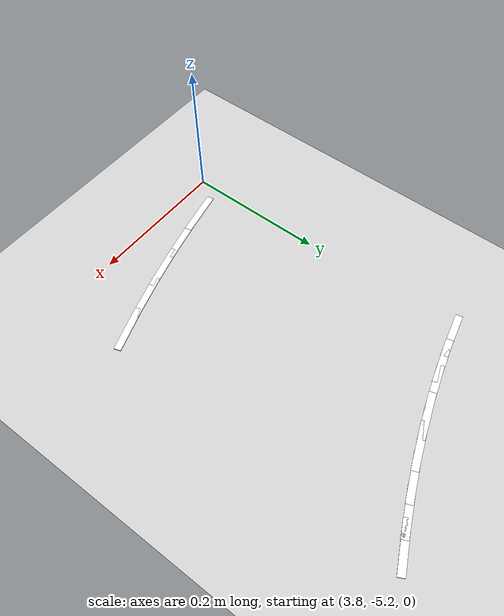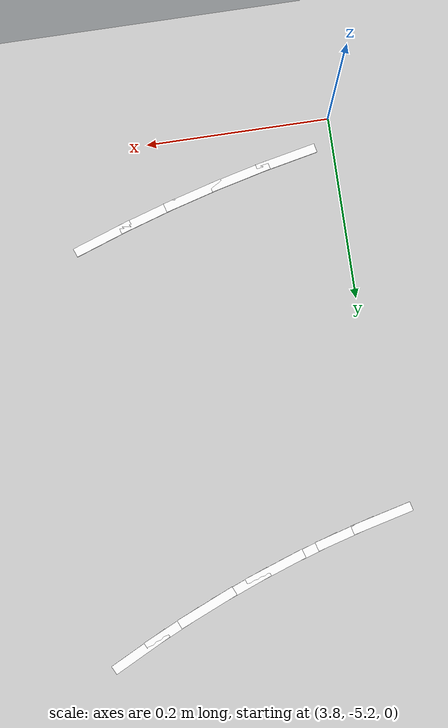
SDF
<sdf version="1.7">
 <world name="default">
  <model name="ground_plane">
   <static>1</static>
   <link name="link">
    <collision name="collision">
     <geometry><plane><normal>0 0 1</normal><size>100 100</size></plane></geometry>
     <surface>
      <contact><collide_bitmask>65535</collide_bitmask></contact>
      <friction><ode><mu>100</mu><mu2>50</mu2></ode></friction>
     </surface>
    </collision>
    <visual name="visual">
     <cast_shadows>0</cast_shadows>
     <geometry><plane><normal>0 0 1</normal><size>100 100</size></plane></geometry>
     <material>
      <script><uri>file://media/materials/scripts/gazebo.material</uri><name>Gazebo/Grey</name></script>
     </material>
    </visual>
   </link>
  </model>
  <model name="lane_line_right_56">
   <static>1</static>
   <link name="link">
    <pose>0 0 -0.004 0 -0 0</pose>
    <visual name="visual">
     <geometry><box><size>0.0681 0.01 0.01</size></box></geometry>
     <material><ambient>1 1 1 1</ambient><diffuse>1 1 1 1</diffuse></material>
    </visual>
    <collision name="collision"><geometry><box><size>0.0681 0.01 0.01</size></box></geometry></collision>
   </link>
   <pose>3.85163 -5.16304 0 0 -0 0.208371</pose>
  </model>
  <model name="lane_line_left_57">
   <static>1</static>
   <link name="link">
    <pose>0 0 -0.004 0 -0 0</pose>
    <visual name="visual">
     <geometry><box><size>0.0681 0.01 0.01</size></box></geometry>
     <material><ambient>1 1 1 1</ambient><diffuse>1 1 1 1</diffuse></material>
    </visual>
    <collision name="collision"><geometry><box><size>0.0681 0.01 0.01</size></box></geometry></collision>
   </link>
   <pose>3.80951 -4.76242 0 0 -0 0.240428</pose>
  </model>
  <model name="lane_line_right_57">
   <static>1</static>
   <link name="link">
    <pose>0 0 -0.004 0 -0 0</pose>
    <visual name="visual">
     <geometry><box><size>0.0681 0.01 0.01</size></box></geometry>
     <material><ambient>1 1 1 1</ambient><diffuse>1 1 1 1</diffuse></material>
    </visual>
    <collision name="collision"><geometry><box><size>0.0681 0.01 0.01</size></box></geometry></collision>
   </link>
   <pose>3.90476 -5.15091 0 0 -0 0.240428</pose>
  </model>
  <model name="lane_line_left_58">
   <static>1</static>
   <link name="link">
    <pose>0 0 -0.004 0 -0 0</pose>
    <visual name="visual">
     <geometry><box><size>0.0681 0.01 0.01</size></box></geometry>
     <material><ambient>1 1 1 1</ambient><diffuse>1 1 1 1</diffuse></material>
    </visual>
    <collision name="collision"><geometry><box><size>0.0681 0.01 0.01</size></box></geometry></collision>
   </link>
   <pose>3.84981 -4.75185 0 0 -0 0.272485</pose>
  </model>
  <model name="lane_line_right_58">
   <static>1</static>
   <link name="link">
    <pose>0 0 -0.004 0 -0 0</pose>
    <visual name="visual">
     <geometry><box><size>0.0681 0.01 0.01</size></box></geometry>
     <material><ambient>1 1 1 1</ambient><diffuse>1 1 1 1</diffuse></material>
    </visual>
    <collision name="collision"><geometry><box><size>0.0681 0.01 0.01</size></box></geometry></collision>
   </link>
   <pose>3.95746 -5.13709 0 0 -0 0.272485</pose>
  </model>
  <model name="lane_line_left_59">
   <static>1</static>
   <link name="link">
    <pose>0 0 -0.004 0 -0 0</pose>
    <visual name="visual">
     <geometry><box><size>0.0681 0.01 0.01</size></box></geometry>
     <material><ambient>1 1 1 1</ambient><diffuse>1 1 1 1</diffuse></material>
    </visual>
    <collision name="collision"><geometry><box><size>0.0681 0.01 0.01</size></box></geometry></collision>
   </link>
   <pose>3.88976 -4.74 0 0 -0 0.304542</pose>
  </model>
  <model name="lane_line_right_59">
   <static>1</static>
   <link name="link">
    <pose>0 0 -0.004 0 -0 0</pose>
    <visual name="visual">
     <geometry><box><size>0.0681 0.01 0.01</size></box></geometry>
     <material><ambient>1 1 1 1</ambient><diffuse>1 1 1 1</diffuse></material>
    </visual>
    <collision name="collision"><geometry><box><size>0.0681 0.01 0.01</size></box></geometry></collision>
   </link>
   <pose>4.0097 -5.12159 0 0 -0 0.304542</pose>
  </model>
  <model name="lane_line_left_60">
   <static>1</static>
   <link name="link">
    <pose>0 0 -0.004 0 -0 0</pose>
    <visual name="visual">
     <geometry><box><size>0.0681 0.01 0.01</size></box></geometry>
     <material><ambient>1 1 1 1</ambient><diffuse>1 1 1 1</diffuse></material>
    </visual>
    <collision name="collision"><geometry><box><size>0.0681 0.01 0.01</size></box></geometry></collision>
   </link>
   <pose>3.9293 -4.72687 0 0 -0 0.336599</pose>
  </model>
  <model name="lane_line_right_60">
   <static>1</static>
   <link name="link">
    <pose>0 0 -0.004 0 -0 0</pose>
    <visual name="visual">
     <geometry><box><size>0.0681 0.01 0.01</size></box></geometry>
     <material><ambient>1 1 1 1</ambient><diffuse>1 1 1 1</diffuse></material>
    </visual>
    <collision name="collision"><geometry><box><size>0.0681 0.01 0.01</size></box></geometry></collision>
   </link>
   <pose>4.06141 -5.10442 0 0 -0 0.336599</pose>
  </model>
  <model name="lane_line_left_61">
   <static>1</static>
   <link name="link">
    <pose>0 0 -0.004 0 -0 0</pose>
    <visual name="visual">
     <geometry><box><size>0.0681 0.01 0.01</size></box></geometry>
     <material><ambient>1 1 1 1</ambient><diffuse>1 1 1 1</diffuse></material>
    </visual>
    <collision name="collision"><geometry><box><size>0.0681 0.01 0.01</size></box></geometry></collision>
   </link>
   <pose>3.9684 -4.71248 0 0 -0 0.368656</pose>
  </model>
  <model name="lane_line_left_62">
   <static>1</static>
   <link name="link">
    <pose>0 0 -0.004 0 -0 0</pose>
    <visual name="visual">
     <geometry><box><size>0.0681 0.01 0.01</size></box></geometry>
     <material><ambient>1 1 1 1</ambient><diffuse>1 1 1 1</diffuse></material>
    </visual>
    <collision name="collision"><geometry><box><size>0.0681 0.01 0.01</size></box></geometry></collision>
   </link>
   <pose>4.00702 -4.69684 0 0 -0 0.400713</pose>
  </model>
  <model name="lane_line_left_63">
   <static>1</static>
   <link name="link">
    <pose>0 0 -0.004 0 -0 0</pose>
    <visual name="visual">
     <geometry><box><size>0.0681 0.01 0.01</size></box></geometry>
     <material><ambient>1 1 1 1</ambient><diffuse>1 1 1 1</diffuse></material>
    </visual>
    <collision name="collision"><geometry><box><size>0.0681 0.01 0.01</size></box></geometry></collision>
   </link>
   <pose>4.04512 -4.67997 0 0 -0 0.43277</pose>
  </model>
  <model name="lane_line_left_64">
   <static>1</static>
   <link name="link">
    <pose>0 0 -0.004 0 -0 0</pose>
    <visual name="visual">
     <geometry><box><size>0.0681 0.01 0.01</size></box></geometry>
     <material><ambient>1 1 1 1</ambient><diffuse>1 1 1 1</diffuse></material>
    </visual>
    <collision name="collision"><geometry><box><size>0.0681 0.01 0.01</size></box></geometry></collision>
   </link>
   <pose>4.08266 -4.6619 0 0 -0 0.464827</pose>
  </model>
 </world>
</sdf>
